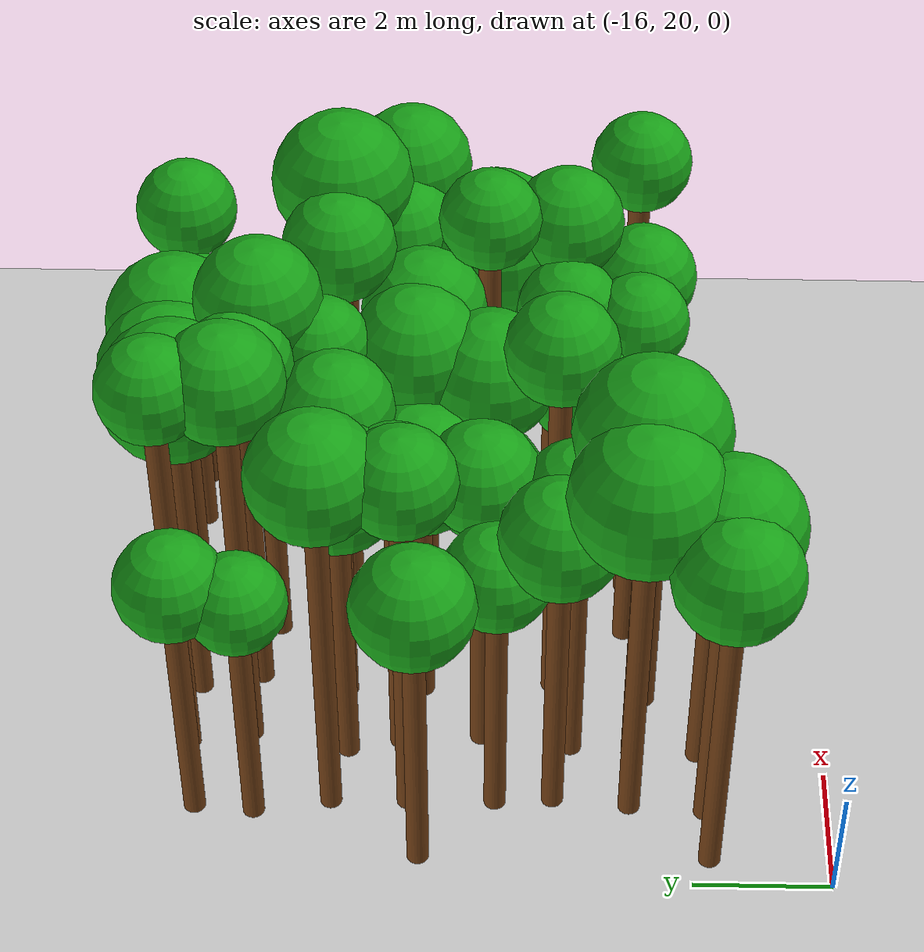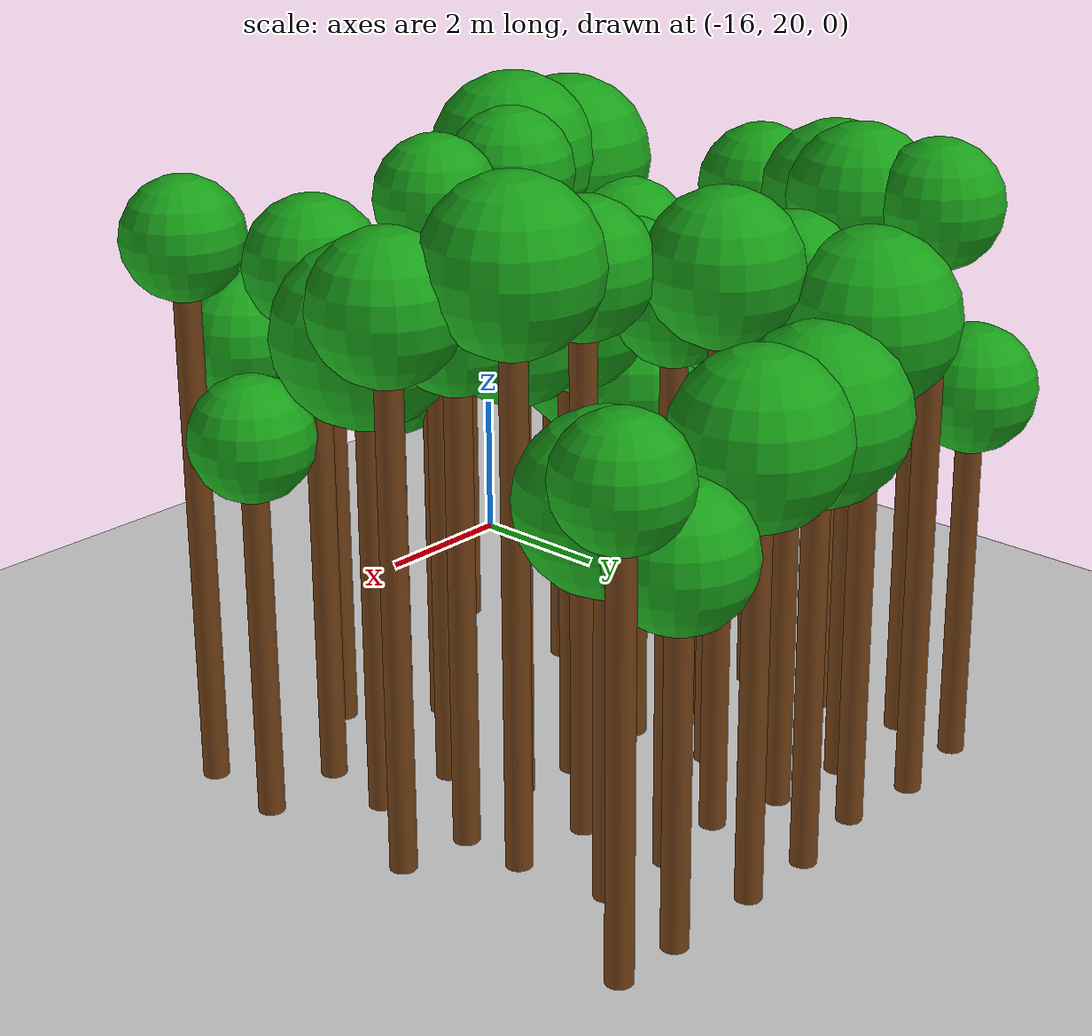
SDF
<sdf version="1.6">
 <world name="forest_world">
  <include><uri>model://sun</uri></include>
  <include><uri>model://ground_plane</uri></include>
  <model name="tree_762_trunk">
   <static>true</static>
   <pose>-15.53 21.75 2.76 0 0 0</pose>
   <link name="link">
    <collision name="collision">
     <geometry><cylinder><radius>0.16</radius><length>5.51</length></cylinder></geometry>
    </collision>
    <visual name="visual">
     <geometry><cylinder><radius>0.16</radius><length>5.51</length></cylinder></geometry>
     <material><ambient>0.35 0.20 0.05 1</ambient><diffuse>0.45 0.25 0.08 1</diffuse></material>
    </visual>
   </link>
  </model>
  <model name="tree_762_leaf">
   <static>true</static>
   <pose>-15.53 21.75 6.05 0 0 0</pose>
   <link name="link">
    <collision name="collision"><geometry><sphere><radius>0.89</radius></sphere></geometry></collision>
    <visual name="visual">
     <geometry><sphere><radius>0.89</radius></sphere></geometry>
     <material><ambient>0.05 0.45 0.05 1</ambient><diffuse>0.10 0.65 0.10 1</diffuse></material>
    </visual>
   </link>
  </model>
  <model name="tree_766_trunk">
   <static>true</static>
   <pose>-15.55 25.94 2.44 0 0 0</pose>
   <link name="link">
    <collision name="collision">
     <geometry><cylinder><radius>0.16</radius><length>4.88</length></cylinder></geometry>
    </collision>
    <visual name="visual">
     <geometry><cylinder><radius>0.16</radius><length>4.88</length></cylinder></geometry>
     <material><ambient>0.35 0.20 0.05 1</ambient><diffuse>0.45 0.25 0.08 1</diffuse></material>
    </visual>
   </link>
  </model>
  <model name="tree_766_leaf">
   <static>true</static>
   <pose>-15.55 25.94 5.40 0 0 0</pose>
   <link name="link">
    <collision name="collision"><geometry><sphere><radius>0.86</radius></sphere></geometry></collision>
    <visual name="visual">
     <geometry><sphere><radius>0.86</radius></sphere></geometry>
     <material><ambient>0.05 0.45 0.05 1</ambient><diffuse>0.10 0.65 0.10 1</diffuse></material>
    </visual>
   </link>
  </model>
  <model name="tree_817_trunk">
   <static>true</static>
   <pose>-14.68 21.79 2.74 0 0 0</pose>
   <link name="link">
    <collision name="collision">
     <geometry><cylinder><radius>0.16</radius><length>5.48</length></cylinder></geometry>
    </collision>
    <visual name="visual">
     <geometry><cylinder><radius>0.16</radius><length>5.48</length></cylinder></geometry>
     <material><ambient>0.35 0.20 0.05 1</ambient><diffuse>0.45 0.25 0.08 1</diffuse></material>
    </visual>
   </link>
  </model>
  <model name="tree_817_leaf">
   <static>true</static>
   <pose>-14.68 21.79 6.08 0 0 0</pose>
   <link name="link">
    <collision name="collision"><geometry><sphere><radius>1.01</radius></sphere></geometry></collision>
    <visual name="visual">
     <geometry><sphere><radius>1.01</radius></sphere></geometry>
     <material><ambient>0.05 0.45 0.05 1</ambient><diffuse>0.10 0.65 0.10 1</diffuse></material>
    </visual>
   </link>
  </model>
  <model name="tree_818_trunk">
   <static>true</static>
   <pose>-14.60 22.89 2.94 0 0 0</pose>
   <link name="link">
    <collision name="collision">
     <geometry><cylinder><radius>0.16</radius><length>5.88</length></cylinder></geometry>
    </collision>
    <visual name="visual">
     <geometry><cylinder><radius>0.16</radius><length>5.88</length></cylinder></geometry>
     <material><ambient>0.35 0.20 0.05 1</ambient><diffuse>0.45 0.25 0.08 1</diffuse></material>
    </visual>
   </link>
  </model>
  <model name="tree_818_leaf">
   <static>true</static>
   <pose>-14.60 22.89 6.53 0 0 0</pose>
   <link name="link">
    <collision name="collision"><geometry><sphere><radius>1.09</radius></sphere></geometry></collision>
    <visual name="visual">
     <geometry><sphere><radius>1.09</radius></sphere></geometry>
     <material><ambient>0.05 0.45 0.05 1</ambient><diffuse>0.10 0.65 0.10 1</diffuse></material>
    </visual>
   </link>
  </model>
  <model name="tree_819_trunk">
   <static>true</static>
   <pose>-14.49 24.01 2.54 0 0 0</pose>
   <link name="link">
    <collision name="collision">
     <geometry><cylinder><radius>0.16</radius><length>5.09</length></cylinder></geometry>
    </collision>
    <visual name="visual">
     <geometry><cylinder><radius>0.16</radius><length>5.09</length></cylinder></geometry>
     <material><ambient>0.35 0.20 0.05 1</ambient><diffuse>0.45 0.25 0.08 1</diffuse></material>
    </visual>
   </link>
  </model>
  <model name="tree_819_leaf">
   <static>true</static>
   <pose>-14.49 24.01 5.61 0 0 0</pose>
   <link name="link">
    <collision name="collision"><geometry><sphere><radius>0.86</radius></sphere></geometry></collision>
    <visual name="visual">
     <geometry><sphere><radius>0.86</radius></sphere></geometry>
     <material><ambient>0.05 0.45 0.05 1</ambient><diffuse>0.10 0.65 0.10 1</diffuse></material>
    </visual>
   </link>
  </model>
  <model name="tree_820_trunk">
   <static>true</static>
   <pose>-14.55 24.85 2.22 0 0 0</pose>
   <link name="link">
    <collision name="collision">
     <geometry><cylinder><radius>0.16</radius><length>4.45</length></cylinder></geometry>
    </collision>
    <visual name="visual">
     <geometry><cylinder><radius>0.16</radius><length>4.45</length></cylinder></geometry>
     <material><ambient>0.35 0.20 0.05 1</ambient><diffuse>0.45 0.25 0.08 1</diffuse></material>
    </visual>
   </link>
  </model>
  <model name="tree_820_leaf">
   <static>true</static>
   <pose>-14.55 24.85 4.91 0 0 0</pose>
   <link name="link">
    <collision name="collision"><geometry><sphere><radius>0.77</radius></sphere></geometry></collision>
    <visual name="visual">
     <geometry><sphere><radius>0.77</radius></sphere></geometry>
     <material><ambient>0.05 0.45 0.05 1</ambient><diffuse>0.10 0.65 0.10 1</diffuse></material>
    </visual>
   </link>
  </model>
  <model name="tree_821_trunk">
   <static>true</static>
   <pose>-14.57 26.12 3.13 0 0 0</pose>
   <link name="link">
    <collision name="collision">
     <geometry><cylinder><radius>0.16</radius><length>6.26</length></cylinder></geometry>
    </collision>
    <visual name="visual">
     <geometry><cylinder><radius>0.16</radius><length>6.26</length></cylinder></geometry>
     <material><ambient>0.35 0.20 0.05 1</ambient><diffuse>0.45 0.25 0.08 1</diffuse></material>
    </visual>
   </link>
  </model>
  <model name="tree_821_leaf">
   <static>true</static>
   <pose>-14.57 26.12 6.73 0 0 0</pose>
   <link name="link">
    <collision name="collision"><geometry><sphere><radius>0.78</radius></sphere></geometry></collision>
    <visual name="visual">
     <geometry><sphere><radius>0.78</radius></sphere></geometry>
     <material><ambient>0.05 0.45 0.05 1</ambient><diffuse>0.10 0.65 0.10 1</diffuse></material>
    </visual>
   </link>
  </model>
  <model name="tree_822_trunk">
   <static>true</static>
   <pose>-14.58 27.24 3.13 0 0 0</pose>
   <link name="link">
    <collision name="collision">
     <geometry><cylinder><radius>0.16</radius><length>6.26</length></cylinder></geometry>
    </collision>
    <visual name="visual">
     <geometry><cylinder><radius>0.16</radius><length>6.26</length></cylinder></geometry>
     <material><ambient>0.35 0.20 0.05 1</ambient><diffuse>0.45 0.25 0.08 1</diffuse></material>
    </visual>
   </link>
  </model>
  <model name="tree_822_leaf">
   <static>true</static>
   <pose>-14.58 27.24 6.81 0 0 0</pose>
   <link name="link">
    <collision name="collision"><geometry><sphere><radius>0.92</radius></sphere></geometry></collision>
    <visual name="visual">
     <geometry><sphere><radius>0.92</radius></sphere></geometry>
     <material><ambient>0.05 0.45 0.05 1</ambient><diffuse>0.10 0.65 0.10 1</diffuse></material>
    </visual>
   </link>
  </model>
  <model name="tree_823_trunk">
   <static>true</static>
   <pose>-14.78 28.36 2.06 0 0 0</pose>
   <link name="link">
    <collision name="collision">
     <geometry><cylinder><radius>0.16</radius><length>4.11</length></cylinder></geometry>
    </collision>
    <visual name="visual">
     <geometry><cylinder><radius>0.16</radius><length>4.11</length></cylinder></geometry>
     <material><ambient>0.35 0.20 0.05 1</ambient><diffuse>0.45 0.25 0.08 1</diffuse></material>
    </visual>
   </link>
  </model>
  <model name="tree_823_leaf">
   <static>true</static>
   <pose>-14.78 28.36 4.55 0 0 0</pose>
   <link name="link">
    <collision name="collision"><geometry><sphere><radius>0.72</radius></sphere></geometry></collision>
    <visual name="visual">
     <geometry><sphere><radius>0.72</radius></sphere></geometry>
     <material><ambient>0.05 0.45 0.05 1</ambient><diffuse>0.10 0.65 0.10 1</diffuse></material>
    </visual>
   </link>
  </model>
  <model name="tree_824_trunk">
   <static>true</static>
   <pose>-14.71 29.23 2.17 0 0 0</pose>
   <link name="link">
    <collision name="collision">
     <geometry><cylinder><radius>0.16</radius><length>4.33</length></cylinder></geometry>
    </collision>
    <visual name="visual">
     <geometry><cylinder><radius>0.16</radius><length>4.33</length></cylinder></geometry>
     <material><ambient>0.35 0.20 0.05 1</ambient><diffuse>0.45 0.25 0.08 1</diffuse></material>
    </visual>
   </link>
  </model>
  <model name="tree_824_leaf">
   <static>true</static>
   <pose>-14.71 29.23 4.80 0 0 0</pose>
   <link name="link">
    <collision name="collision"><geometry><sphere><radius>0.78</radius></sphere></geometry></collision>
    <visual name="visual">
     <geometry><sphere><radius>0.78</radius></sphere></geometry>
     <material><ambient>0.05 0.45 0.05 1</ambient><diffuse>0.10 0.65 0.10 1</diffuse></material>
    </visual>
   </link>
  </model>
  <model name="tree_872_trunk">
   <static>true</static>
   <pose>-13.62 21.87 2.33 0 0 0</pose>
   <link name="link">
    <collision name="collision">
     <geometry><cylinder><radius>0.16</radius><length>4.67</length></cylinder></geometry>
    </collision>
    <visual name="visual">
     <geometry><cylinder><radius>0.16</radius><length>4.67</length></cylinder></geometry>
     <material><ambient>0.35 0.20 0.05 1</ambient><diffuse>0.45 0.25 0.08 1</diffuse></material>
    </visual>
   </link>
  </model>
  <model name="tree_872_leaf">
   <static>true</static>
   <pose>-13.62 21.87 5.19 0 0 0</pose>
   <link name="link">
    <collision name="collision"><geometry><sphere><radius>0.88</radius></sphere></geometry></collision>
    <visual name="visual">
     <geometry><sphere><radius>0.88</radius></sphere></geometry>
     <material><ambient>0.05 0.45 0.05 1</ambient><diffuse>0.10 0.65 0.10 1</diffuse></material>
    </visual>
   </link>
  </model>
  <model name="tree_873_trunk">
   <static>true</static>
   <pose>-13.62 22.83 3.05 0 0 0</pose>
   <link name="link">
    <collision name="collision">
     <geometry><cylinder><radius>0.16</radius><length>6.10</length></cylinder></geometry>
    </collision>
    <visual name="visual">
     <geometry><cylinder><radius>0.16</radius><length>6.10</length></cylinder></geometry>
     <material><ambient>0.35 0.20 0.05 1</ambient><diffuse>0.45 0.25 0.08 1</diffuse></material>
    </visual>
   </link>
  </model>
  <model name="tree_873_leaf">
   <static>true</static>
   <pose>-13.62 22.83 6.74 0 0 0</pose>
   <link name="link">
    <collision name="collision"><geometry><sphere><radius>1.08</radius></sphere></geometry></collision>
    <visual name="visual">
     <geometry><sphere><radius>1.08</radius></sphere></geometry>
     <material><ambient>0.05 0.45 0.05 1</ambient><diffuse>0.10 0.65 0.10 1</diffuse></material>
    </visual>
   </link>
  </model>
  <model name="tree_874_trunk">
   <static>true</static>
   <pose>-13.52 23.74 2.44 0 0 0</pose>
   <link name="link">
    <collision name="collision">
     <geometry><cylinder><radius>0.16</radius><length>4.89</length></cylinder></geometry>
    </collision>
    <visual name="visual">
     <geometry><cylinder><radius>0.16</radius><length>4.89</length></cylinder></geometry>
     <material><ambient>0.35 0.20 0.05 1</ambient><diffuse>0.45 0.25 0.08 1</diffuse></material>
    </visual>
   </link>
  </model>
  <model name="tree_874_leaf">
   <static>true</static>
   <pose>-13.52 23.74 5.38 0 0 0</pose>
   <link name="link">
    <collision name="collision"><geometry><sphere><radius>0.83</radius></sphere></geometry></collision>
    <visual name="visual">
     <geometry><sphere><radius>0.83</radius></sphere></geometry>
     <material><ambient>0.05 0.45 0.05 1</ambient><diffuse>0.10 0.65 0.10 1</diffuse></material>
    </visual>
   </link>
  </model>
  <model name="tree_875_trunk">
   <static>true</static>
   <pose>-13.35 25.07 2.54 0 0 0</pose>
   <link name="link">
    <collision name="collision">
     <geometry><cylinder><radius>0.16</radius><length>5.08</length></cylinder></geometry>
    </collision>
    <visual name="visual">
     <geometry><cylinder><radius>0.16</radius><length>5.08</length></cylinder></geometry>
     <material><ambient>0.35 0.20 0.05 1</ambient><diffuse>0.45 0.25 0.08 1</diffuse></material>
    </visual>
   </link>
  </model>
  <model name="tree_875_leaf">
   <static>true</static>
   <pose>-13.35 25.07 5.57 0 0 0</pose>
   <link name="link">
    <collision name="collision"><geometry><sphere><radius>0.81</radius></sphere></geometry></collision>
    <visual name="visual">
     <geometry><sphere><radius>0.81</radius></sphere></geometry>
     <material><ambient>0.05 0.45 0.05 1</ambient><diffuse>0.10 0.65 0.10 1</diffuse></material>
    </visual>
   </link>
  </model>
  <model name="tree_876_trunk">
   <static>true</static>
   <pose>-13.44 26.26 2.61 0 0 0</pose>
   <link name="link">
    <collision name="collision">
     <geometry><cylinder><radius>0.16</radius><length>5.23</length></cylinder></geometry>
    </collision>
    <visual name="visual">
     <geometry><cylinder><radius>0.16</radius><length>5.23</length></cylinder></geometry>
     <material><ambient>0.35 0.20 0.05 1</ambient><diffuse>0.45 0.25 0.08 1</diffuse></material>
    </visual>
   </link>
  </model>
  <model name="tree_876_leaf">
   <static>true</static>
   <pose>-13.44 26.26 5.68 0 0 0</pose>
   <link name="link">
    <collision name="collision"><geometry><sphere><radius>0.75</radius></sphere></geometry></collision>
    <visual name="visual">
     <geometry><sphere><radius>0.75</radius></sphere></geometry>
     <material><ambient>0.05 0.45 0.05 1</ambient><diffuse>0.10 0.65 0.10 1</diffuse></material>
    </visual>
   </link>
  </model>
  <model name="tree_877_trunk">
   <static>true</static>
   <pose>-13.62 27.03 2.53 0 0 0</pose>
   <link name="link">
    <collision name="collision">
     <geometry><cylinder><radius>0.16</radius><length>5.07</length></cylinder></geometry>
    </collision>
    <visual name="visual">
     <geometry><cylinder><radius>0.16</radius><length>5.07</length></cylinder></geometry>
     <material><ambient>0.35 0.20 0.05 1</ambient><diffuse>0.45 0.25 0.08 1</diffuse></material>
    </visual>
   </link>
  </model>
  <model name="tree_877_leaf">
   <static>true</static>
   <pose>-13.62 27.03 5.62 0 0 0</pose>
   <link name="link">
    <collision name="collision"><geometry><sphere><radius>0.93</radius></sphere></geometry></collision>
    <visual name="visual">
     <geometry><sphere><radius>0.93</radius></sphere></geometry>
     <material><ambient>0.05 0.45 0.05 1</ambient><diffuse>0.10 0.65 0.10 1</diffuse></material>
    </visual>
   </link>
  </model>
  <model name="tree_878_trunk">
   <static>true</static>
   <pose>-13.34 28.48 3.38 0 0 0</pose>
   <link name="link">
    <collision name="collision">
     <geometry><cylinder><radius>0.16</radius><length>6.76</length></cylinder></geometry>
    </collision>
    <visual name="visual">
     <geometry><cylinder><radius>0.16</radius><length>6.76</length></cylinder></geometry>
     <material><ambient>0.35 0.20 0.05 1</ambient><diffuse>0.45 0.25 0.08 1</diffuse></material>
    </visual>
   </link>
  </model>
  <model name="tree_878_leaf">
   <static>true</static>
   <pose>-13.34 28.48 7.27 0 0 0</pose>
   <link name="link">
    <collision name="collision"><geometry><sphere><radius>0.85</radius></sphere></geometry></collision>
    <visual name="visual">
     <geometry><sphere><radius>0.85</radius></sphere></geometry>
     <material><ambient>0.05 0.45 0.05 1</ambient><diffuse>0.10 0.65 0.10 1</diffuse></material>
    </visual>
   </link>
  </model>
  <model name="tree_879_trunk">
   <static>true</static>
   <pose>-13.53 29.40 3.43 0 0 0</pose>
   <link name="link">
    <collision name="collision">
     <geometry><cylinder><radius>0.16</radius><length>6.86</length></cylinder></geometry>
    </collision>
    <visual name="visual">
     <geometry><cylinder><radius>0.16</radius><length>6.86</length></cylinder></geometry>
     <material><ambient>0.35 0.20 0.05 1</ambient><diffuse>0.45 0.25 0.08 1</diffuse></material>
    </visual>
   </link>
  </model>
  <model name="tree_879_leaf">
   <static>true</static>
   <pose>-13.53 29.40 7.31 0 0 0</pose>
   <link name="link">
    <collision name="collision"><geometry><sphere><radius>0.75</radius></sphere></geometry></collision>
    <visual name="visual">
     <geometry><sphere><radius>0.75</radius></sphere></geometry>
     <material><ambient>0.05 0.45 0.05 1</ambient><diffuse>0.10 0.65 0.10 1</diffuse></material>
    </visual>
   </link>
  </model>
  <model name="tree_928_trunk">
   <static>true</static>
   <pose>-12.57 22.63 2.17 0 0 0</pose>
   <link name="link">
    <collision name="collision">
     <geometry><cylinder><radius>0.16</radius><length>4.35</length></cylinder></geometry>
    </collision>
    <visual name="visual">
     <geometry><cylinder><radius>0.16</radius><length>4.35</length></cylinder></geometry>
     <material><ambient>0.35 0.20 0.05 1</ambient><diffuse>0.45 0.25 0.08 1</diffuse></material>
    </visual>
   </link>
  </model>
  <model name="tree_928_leaf">
   <static>true</static>
   <pose>-12.57 22.63 4.94 0 0 0</pose>
   <link name="link">
    <collision name="collision"><geometry><sphere><radius>0.98</radius></sphere></geometry></collision>
    <visual name="visual">
     <geometry><sphere><radius>0.98</radius></sphere></geometry>
     <material><ambient>0.05 0.45 0.05 1</ambient><diffuse>0.10 0.65 0.10 1</diffuse></material>
    </visual>
   </link>
  </model>
  <model name="tree_929_trunk">
   <static>true</static>
   <pose>-12.32 24.02 3.26 0 0 0</pose>
   <link name="link">
    <collision name="collision">
     <geometry><cylinder><radius>0.16</radius><length>6.52</length></cylinder></geometry>
    </collision>
    <visual name="visual">
     <geometry><cylinder><radius>0.16</radius><length>6.52</length></cylinder></geometry>
     <material><ambient>0.35 0.20 0.05 1</ambient><diffuse>0.45 0.25 0.08 1</diffuse></material>
    </visual>
   </link>
  </model>
  <model name="tree_929_leaf">
   <static>true</static>
   <pose>-12.32 24.02 6.99 0 0 0</pose>
   <link name="link">
    <collision name="collision"><geometry><sphere><radius>0.79</radius></sphere></geometry></collision>
    <visual name="visual">
     <geometry><sphere><radius>0.79</radius></sphere></geometry>
     <material><ambient>0.05 0.45 0.05 1</ambient><diffuse>0.10 0.65 0.10 1</diffuse></material>
    </visual>
   </link>
  </model>
  <model name="tree_930_trunk">
   <static>true</static>
   <pose>-12.57 25.03 2.09 0 0 0</pose>
   <link name="link">
    <collision name="collision">
     <geometry><cylinder><radius>0.16</radius><length>4.17</length></cylinder></geometry>
    </collision>
    <visual name="visual">
     <geometry><cylinder><radius>0.16</radius><length>4.17</length></cylinder></geometry>
     <material><ambient>0.35 0.20 0.05 1</ambient><diffuse>0.45 0.25 0.08 1</diffuse></material>
    </visual>
   </link>
  </model>
  <model name="tree_930_leaf">
   <static>true</static>
   <pose>-12.57 25.03 4.69 0 0 0</pose>
   <link name="link">
    <collision name="collision"><geometry><sphere><radius>0.85</radius></sphere></geometry></collision>
    <visual name="visual">
     <geometry><sphere><radius>0.85</radius></sphere></geometry>
     <material><ambient>0.05 0.45 0.05 1</ambient><diffuse>0.10 0.65 0.10 1</diffuse></material>
    </visual>
   </link>
  </model>
  <model name="tree_931_trunk">
   <static>true</static>
   <pose>-12.43 25.95 2.11 0 0 0</pose>
   <link name="link">
    <collision name="collision">
     <geometry><cylinder><radius>0.16</radius><length>4.22</length></cylinder></geometry>
    </collision>
    <visual name="visual">
     <geometry><cylinder><radius>0.16</radius><length>4.22</length></cylinder></geometry>
     <material><ambient>0.35 0.20 0.05 1</ambient><diffuse>0.45 0.25 0.08 1</diffuse></material>
    </visual>
   </link>
  </model>
  <model name="tree_931_leaf">
   <static>true</static>
   <pose>-12.43 25.95 4.80 0 0 0</pose>
   <link name="link">
    <collision name="collision"><geometry><sphere><radius>0.97</radius></sphere></geometry></collision>
    <visual name="visual">
     <geometry><sphere><radius>0.97</radius></sphere></geometry>
     <material><ambient>0.05 0.45 0.05 1</ambient><diffuse>0.10 0.65 0.10 1</diffuse></material>
    </visual>
   </link>
  </model>
  <model name="tree_932_trunk">
   <static>true</static>
   <pose>-12.49 27.10 2.73 0 0 0</pose>
   <link name="link">
    <collision name="collision">
     <geometry><cylinder><radius>0.16</radius><length>5.46</length></cylinder></geometry>
    </collision>
    <visual name="visual">
     <geometry><cylinder><radius>0.16</radius><length>5.46</length></cylinder></geometry>
     <material><ambient>0.35 0.20 0.05 1</ambient><diffuse>0.45 0.25 0.08 1</diffuse></material>
    </visual>
   </link>
  </model>
  <model name="tree_932_leaf">
   <static>true</static>
   <pose>-12.49 27.10 5.97 0 0 0</pose>
   <link name="link">
    <collision name="collision"><geometry><sphere><radius>0.84</radius></sphere></geometry></collision>
    <visual name="visual">
     <geometry><sphere><radius>0.84</radius></sphere></geometry>
     <material><ambient>0.05 0.45 0.05 1</ambient><diffuse>0.10 0.65 0.10 1</diffuse></material>
    </visual>
   </link>
  </model>
  <model name="tree_933_trunk">
   <static>true</static>
   <pose>-12.23 28.40 3.05 0 0 0</pose>
   <link name="link">
    <collision name="collision">
     <geometry><cylinder><radius>0.16</radius><length>6.10</length></cylinder></geometry>
    </collision>
    <visual name="visual">
     <geometry><cylinder><radius>0.16</radius><length>6.10</length></cylinder></geometry>
     <material><ambient>0.35 0.20 0.05 1</ambient><diffuse>0.45 0.25 0.08 1</diffuse></material>
    </visual>
   </link>
  </model>
  <model name="tree_933_leaf">
   <static>true</static>
   <pose>-12.23 28.40 6.56 0 0 0</pose>
   <link name="link">
    <collision name="collision"><geometry><sphere><radius>0.76</radius></sphere></geometry></collision>
    <visual name="visual">
     <geometry><sphere><radius>0.76</radius></sphere></geometry>
     <material><ambient>0.05 0.45 0.05 1</ambient><diffuse>0.10 0.65 0.10 1</diffuse></material>
    </visual>
   </link>
  </model>
  <model name="tree_934_trunk">
   <static>true</static>
   <pose>-12.45 29.31 2.81 0 0 0</pose>
   <link name="link">
    <collision name="collision">
     <geometry><cylinder><radius>0.16</radius><length>5.63</length></cylinder></geometry>
    </collision>
    <visual name="visual">
     <geometry><cylinder><radius>0.16</radius><length>5.63</length></cylinder></geometry>
     <material><ambient>0.35 0.20 0.05 1</ambient><diffuse>0.45 0.25 0.08 1</diffuse></material>
    </visual>
   </link>
  </model>
  <model name="tree_934_leaf">
   <static>true</static>
   <pose>-12.45 29.31 6.24 0 0 0</pose>
   <link name="link">
    <collision name="collision"><geometry><sphere><radius>1.02</radius></sphere></geometry></collision>
    <visual name="visual">
     <geometry><sphere><radius>1.02</radius></sphere></geometry>
     <material><ambient>0.05 0.45 0.05 1</ambient><diffuse>0.10 0.65 0.10 1</diffuse></material>
    </visual>
   </link>
  </model>
  <model name="tree_983_trunk">
   <static>true</static>
   <pose>-11.25 22.92 2.01 0 0 0</pose>
   <link name="link">
    <collision name="collision">
     <geometry><cylinder><radius>0.16</radius><length>4.02</length></cylinder></geometry>
    </collision>
    <visual name="visual">
     <geometry><cylinder><radius>0.16</radius><length>4.02</length></cylinder></geometry>
     <material><ambient>0.35 0.20 0.05 1</ambient><diffuse>0.45 0.25 0.08 1</diffuse></material>
    </visual>
   </link>
  </model>
  <model name="tree_983_leaf">
   <static>true</static>
   <pose>-11.25 22.92 4.60 0 0 0</pose>
   <link name="link">
    <collision name="collision"><geometry><sphere><radius>0.96</radius></sphere></geometry></collision>
    <visual name="visual">
     <geometry><sphere><radius>0.96</radius></sphere></geometry>
     <material><ambient>0.05 0.45 0.05 1</ambient><diffuse>0.10 0.65 0.10 1</diffuse></material>
    </visual>
   </link>
  </model>
  <model name="tree_984_trunk">
   <static>true</static>
   <pose>-11.24 23.72 2.38 0 0 0</pose>
   <link name="link">
    <collision name="collision">
     <geometry><cylinder><radius>0.16</radius><length>4.76</length></cylinder></geometry>
    </collision>
    <visual name="visual">
     <geometry><cylinder><radius>0.16</radius><length>4.76</length></cylinder></geometry>
     <material><ambient>0.35 0.20 0.05 1</ambient><diffuse>0.45 0.25 0.08 1</diffuse></material>
    </visual>
   </link>
  </model>
  <model name="tree_984_leaf">
   <static>true</static>
   <pose>-11.24 23.72 5.22 0 0 0</pose>
   <link name="link">
    <collision name="collision"><geometry><sphere><radius>0.77</radius></sphere></geometry></collision>
    <visual name="visual">
     <geometry><sphere><radius>0.77</radius></sphere></geometry>
     <material><ambient>0.05 0.45 0.05 1</ambient><diffuse>0.10 0.65 0.10 1</diffuse></material>
    </visual>
   </link>
  </model>
  <model name="tree_985_trunk">
   <static>true</static>
   <pose>-11.38 24.98 2.52 0 0 0</pose>
   <link name="link">
    <collision name="collision">
     <geometry><cylinder><radius>0.16</radius><length>5.04</length></cylinder></geometry>
    </collision>
    <visual name="visual">
     <geometry><cylinder><radius>0.16</radius><length>5.04</length></cylinder></geometry>
     <material><ambient>0.35 0.20 0.05 1</ambient><diffuse>0.45 0.25 0.08 1</diffuse></material>
    </visual>
   </link>
  </model>
  <model name="tree_985_leaf">
   <static>true</static>
   <pose>-11.38 24.98 5.61 0 0 0</pose>
   <link name="link">
    <collision name="collision"><geometry><sphere><radius>0.95</radius></sphere></geometry></collision>
    <visual name="visual">
     <geometry><sphere><radius>0.95</radius></sphere></geometry>
     <material><ambient>0.05 0.45 0.05 1</ambient><diffuse>0.10 0.65 0.10 1</diffuse></material>
    </visual>
   </link>
  </model>
  <model name="tree_986_trunk">
   <static>true</static>
   <pose>-11.19 26.03 2.67 0 0 0</pose>
   <link name="link">
    <collision name="collision">
     <geometry><cylinder><radius>0.16</radius><length>5.35</length></cylinder></geometry>
    </collision>
    <visual name="visual">
     <geometry><cylinder><radius>0.16</radius><length>5.35</length></cylinder></geometry>
     <material><ambient>0.35 0.20 0.05 1</ambient><diffuse>0.45 0.25 0.08 1</diffuse></material>
    </visual>
   </link>
  </model>
  <model name="tree_986_leaf">
   <static>true</static>
   <pose>-11.19 26.03 5.91 0 0 0</pose>
   <link name="link">
    <collision name="collision"><geometry><sphere><radius>0.93</radius></sphere></geometry></collision>
    <visual name="visual">
     <geometry><sphere><radius>0.93</radius></sphere></geometry>
     <material><ambient>0.05 0.45 0.05 1</ambient><diffuse>0.10 0.65 0.10 1</diffuse></material>
    </visual>
   </link>
  </model>
  <model name="tree_987_trunk">
   <static>true</static>
   <pose>-11.46 27.34 2.89 0 0 0</pose>
   <link name="link">
    <collision name="collision">
     <geometry><cylinder><radius>0.16</radius><length>5.77</length></cylinder></geometry>
    </collision>
    <visual name="visual">
     <geometry><cylinder><radius>0.16</radius><length>5.77</length></cylinder></geometry>
     <material><ambient>0.35 0.20 0.05 1</ambient><diffuse>0.45 0.25 0.08 1</diffuse></material>
    </visual>
   </link>
  </model>
  <model name="tree_987_leaf">
   <static>true</static>
   <pose>-11.46 27.34 6.20 0 0 0</pose>
   <link name="link">
    <collision name="collision"><geometry><sphere><radius>0.71</radius></sphere></geometry></collision>
    <visual name="visual">
     <geometry><sphere><radius>0.71</radius></sphere></geometry>
     <material><ambient>0.05 0.45 0.05 1</ambient><diffuse>0.10 0.65 0.10 1</diffuse></material>
    </visual>
   </link>
  </model>
  <model name="tree_988_trunk">
   <static>true</static>
   <pose>-11.26 28.19 3.16 0 0 0</pose>
   <link name="link">
    <collision name="collision">
     <geometry><cylinder><radius>0.16</radius><length>6.31</length></cylinder></geometry>
    </collision>
    <visual name="visual">
     <geometry><cylinder><radius>0.16</radius><length>6.31</length></cylinder></geometry>
     <material><ambient>0.35 0.20 0.05 1</ambient><diffuse>0.45 0.25 0.08 1</diffuse></material>
    </visual>
   </link>
  </model>
  <model name="tree_988_leaf">
   <static>true</static>
   <pose>-11.26 28.19 6.85 0 0 0</pose>
   <link name="link">
    <collision name="collision"><geometry><sphere><radius>0.90</radius></sphere></geometry></collision>
    <visual name="visual">
     <geometry><sphere><radius>0.90</radius></sphere></geometry>
     <material><ambient>0.05 0.45 0.05 1</ambient><diffuse>0.10 0.65 0.10 1</diffuse></material>
    </visual>
   </link>
  </model>
  <model name="tree_989_trunk">
   <static>true</static>
   <pose>-11.29 29.51 2.43 0 0 0</pose>
   <link name="link">
    <collision name="collision">
     <geometry><cylinder><radius>0.16</radius><length>4.86</length></cylinder></geometry>
    </collision>
    <visual name="visual">
     <geometry><cylinder><radius>0.16</radius><length>4.86</length></cylinder></geometry>
     <material><ambient>0.35 0.20 0.05 1</ambient><diffuse>0.45 0.25 0.08 1</diffuse></material>
    </visual>
   </link>
  </model>
  <model name="tree_989_leaf">
   <static>true</static>
   <pose>-11.29 29.51 5.48 0 0 0</pose>
   <link name="link">
    <collision name="collision"><geometry><sphere><radius>1.03</radius></sphere></geometry></collision>
    <visual name="visual">
     <geometry><sphere><radius>1.03</radius></sphere></geometry>
     <material><ambient>0.05 0.45 0.05 1</ambient><diffuse>0.10 0.65 0.10 1</diffuse></material>
    </visual>
   </link>
  </model>
  <model name="tree_1038_trunk">
   <static>true</static>
   <pose>-10.29 22.89 2.60 0 0 0</pose>
   <link name="link">
    <collision name="collision">
     <geometry><cylinder><radius>0.16</radius><length>5.20</length></cylinder></geometry>
    </collision>
    <visual name="visual">
     <geometry><cylinder><radius>0.16</radius><length>5.20</length></cylinder></geometry>
     <material><ambient>0.35 0.20 0.05 1</ambient><diffuse>0.45 0.25 0.08 1</diffuse></material>
    </visual>
   </link>
  </model>
  <model name="tree_1038_leaf">
   <static>true</static>
   <pose>-10.29 22.89 5.63 0 0 0</pose>
   <link name="link">
    <collision name="collision"><geometry><sphere><radius>0.72</radius></sphere></geometry></collision>
    <visual name="visual">
     <geometry><sphere><radius>0.72</radius></sphere></geometry>
     <material><ambient>0.05 0.45 0.05 1</ambient><diffuse>0.10 0.65 0.10 1</diffuse></material>
    </visual>
   </link>
  </model>
  <model name="tree_1039_trunk">
   <static>true</static>
   <pose>-10.16 23.89 2.64 0 0 0</pose>
   <link name="link">
    <collision name="collision">
     <geometry><cylinder><radius>0.16</radius><length>5.29</length></cylinder></geometry>
    </collision>
    <visual name="visual">
     <geometry><cylinder><radius>0.16</radius><length>5.29</length></cylinder></geometry>
     <material><ambient>0.35 0.20 0.05 1</ambient><diffuse>0.45 0.25 0.08 1</diffuse></material>
    </visual>
   </link>
  </model>
  <model name="tree_1039_leaf">
   <static>true</static>
   <pose>-10.16 23.89 5.74 0 0 0</pose>
   <link name="link">
    <collision name="collision"><geometry><sphere><radius>0.75</radius></sphere></geometry></collision>
    <visual name="visual">
     <geometry><sphere><radius>0.75</radius></sphere></geometry>
     <material><ambient>0.05 0.45 0.05 1</ambient><diffuse>0.10 0.65 0.10 1</diffuse></material>
    </visual>
   </link>
  </model>
  <model name="tree_1040_trunk">
   <static>true</static>
   <pose>-10.05 25.02 3.44 0 0 0</pose>
   <link name="link">
    <collision name="collision">
     <geometry><cylinder><radius>0.16</radius><length>6.88</length></cylinder></geometry>
    </collision>
    <visual name="visual">
     <geometry><cylinder><radius>0.16</radius><length>6.88</length></cylinder></geometry>
     <material><ambient>0.35 0.20 0.05 1</ambient><diffuse>0.45 0.25 0.08 1</diffuse></material>
    </visual>
   </link>
  </model>
  <model name="tree_1040_leaf">
   <static>true</static>
   <pose>-10.05 25.02 7.31 0 0 0</pose>
   <link name="link">
    <collision name="collision"><geometry><sphere><radius>0.72</radius></sphere></geometry></collision>
    <visual name="visual">
     <geometry><sphere><radius>0.72</radius></sphere></geometry>
     <material><ambient>0.05 0.45 0.05 1</ambient><diffuse>0.10 0.65 0.10 1</diffuse></material>
    </visual>
   </link>
  </model>
  <model name="tree_1041_trunk">
   <static>true</static>
   <pose>-10.36 25.94 2.68 0 0 0</pose>
   <link name="link">
    <collision name="collision">
     <geometry><cylinder><radius>0.16</radius><length>5.36</length></cylinder></geometry>
    </collision>
    <visual name="visual">
     <geometry><cylinder><radius>0.16</radius><length>5.36</length></cylinder></geometry>
     <material><ambient>0.35 0.20 0.05 1</ambient><diffuse>0.45 0.25 0.08 1</diffuse></material>
    </visual>
   </link>
  </model>
  <model name="tree_1041_leaf">
   <static>true</static>
   <pose>-10.36 25.94 5.90 0 0 0</pose>
   <link name="link">
    <collision name="collision"><geometry><sphere><radius>0.90</radius></sphere></geometry></collision>
    <visual name="visual">
     <geometry><sphere><radius>0.90</radius></sphere></geometry>
     <material><ambient>0.05 0.45 0.05 1</ambient><diffuse>0.10 0.65 0.10 1</diffuse></material>
    </visual>
   </link>
  </model>
  <model name="tree_1042_trunk">
   <static>true</static>
   <pose>-10.17 27.13 3.20 0 0 0</pose>
   <link name="link">
    <collision name="collision">
     <geometry><cylinder><radius>0.16</radius><length>6.40</length></cylinder></geometry>
    </collision>
    <visual name="visual">
     <geometry><cylinder><radius>0.16</radius><length>6.40</length></cylinder></geometry>
     <material><ambient>0.35 0.20 0.05 1</ambient><diffuse>0.45 0.25 0.08 1</diffuse></material>
    </visual>
   </link>
  </model>
  <model name="tree_1042_leaf">
   <static>true</static>
   <pose>-10.17 27.13 6.88 0 0 0</pose>
   <link name="link">
    <collision name="collision"><geometry><sphere><radius>0.81</radius></sphere></geometry></collision>
    <visual name="visual">
     <geometry><sphere><radius>0.81</radius></sphere></geometry>
     <material><ambient>0.05 0.45 0.05 1</ambient><diffuse>0.10 0.65 0.10 1</diffuse></material>
    </visual>
   </link>
  </model>
  <model name="tree_1043_trunk">
   <static>true</static>
   <pose>-10.25 28.33 2.04 0 0 0</pose>
   <link name="link">
    <collision name="collision">
     <geometry><cylinder><radius>0.16</radius><length>4.08</length></cylinder></geometry>
    </collision>
    <visual name="visual">
     <geometry><cylinder><radius>0.16</radius><length>4.08</length></cylinder></geometry>
     <material><ambient>0.35 0.20 0.05 1</ambient><diffuse>0.45 0.25 0.08 1</diffuse></material>
    </visual>
   </link>
  </model>
  <model name="tree_1043_leaf">
   <static>true</static>
   <pose>-10.25 28.33 4.55 0 0 0</pose>
   <link name="link">
    <collision name="collision"><geometry><sphere><radius>0.78</radius></sphere></geometry></collision>
    <visual name="visual">
     <geometry><sphere><radius>0.78</radius></sphere></geometry>
     <material><ambient>0.05 0.45 0.05 1</ambient><diffuse>0.10 0.65 0.10 1</diffuse></material>
    </visual>
   </link>
  </model>
  <model name="tree_1044_trunk">
   <static>true</static>
   <pose>-10.26 29.52 2.45 0 0 0</pose>
   <link name="link">
    <collision name="collision">
     <geometry><cylinder><radius>0.16</radius><length>4.90</length></cylinder></geometry>
    </collision>
    <visual name="visual">
     <geometry><cylinder><radius>0.16</radius><length>4.90</length></cylinder></geometry>
     <material><ambient>0.35 0.20 0.05 1</ambient><diffuse>0.45 0.25 0.08 1</diffuse></material>
    </visual>
   </link>
  </model>
  <model name="tree_1044_leaf">
   <static>true</static>
   <pose>-10.26 29.52 5.50 0 0 0</pose>
   <link name="link">
    <collision name="collision"><geometry><sphere><radius>1.01</radius></sphere></geometry></collision>
    <visual name="visual">
     <geometry><sphere><radius>1.01</radius></sphere></geometry>
     <material><ambient>0.05 0.45 0.05 1</ambient><diffuse>0.10 0.65 0.10 1</diffuse></material>
    </visual>
   </link>
  </model>
  <model name="tree_1093_trunk">
   <static>true</static>
   <pose>-9.06 22.80 2.46 0 0 0</pose>
   <link name="link">
    <collision name="collision">
     <geometry><cylinder><radius>0.16</radius><length>4.92</length></cylinder></geometry>
    </collision>
    <visual name="visual">
     <geometry><cylinder><radius>0.16</radius><length>4.92</length></cylinder></geometry>
     <material><ambient>0.35 0.20 0.05 1</ambient><diffuse>0.45 0.25 0.08 1</diffuse></material>
    </visual>
   </link>
  </model>
  <model name="tree_1093_leaf">
   <static>true</static>
   <pose>-9.06 22.80 5.40 0 0 0</pose>
   <link name="link">
    <collision name="collision"><geometry><sphere><radius>0.79</radius></sphere></geometry></collision>
    <visual name="visual">
     <geometry><sphere><radius>0.79</radius></sphere></geometry>
     <material><ambient>0.05 0.45 0.05 1</ambient><diffuse>0.10 0.65 0.10 1</diffuse></material>
    </visual>
   </link>
  </model>
  <model name="tree_1094_trunk">
   <static>true</static>
   <pose>-9.15 23.92 3.01 0 0 0</pose>
   <link name="link">
    <collision name="collision">
     <geometry><cylinder><radius>0.16</radius><length>6.02</length></cylinder></geometry>
    </collision>
    <visual name="visual">
     <geometry><cylinder><radius>0.16</radius><length>6.02</length></cylinder></geometry>
     <material><ambient>0.35 0.20 0.05 1</ambient><diffuse>0.45 0.25 0.08 1</diffuse></material>
    </visual>
   </link>
  </model>
  <model name="tree_1094_leaf">
   <static>true</static>
   <pose>-9.15 23.92 6.51 0 0 0</pose>
   <link name="link">
    <collision name="collision"><geometry><sphere><radius>0.81</radius></sphere></geometry></collision>
    <visual name="visual">
     <geometry><sphere><radius>0.81</radius></sphere></geometry>
     <material><ambient>0.05 0.45 0.05 1</ambient><diffuse>0.10 0.65 0.10 1</diffuse></material>
    </visual>
   </link>
  </model>
  <model name="tree_1095_trunk">
   <static>true</static>
   <pose>-8.98 24.95 2.65 0 0 0</pose>
   <link name="link">
    <collision name="collision">
     <geometry><cylinder><radius>0.16</radius><length>5.29</length></cylinder></geometry>
    </collision>
    <visual name="visual">
     <geometry><cylinder><radius>0.16</radius><length>5.29</length></cylinder></geometry>
     <material><ambient>0.35 0.20 0.05 1</ambient><diffuse>0.45 0.25 0.08 1</diffuse></material>
    </visual>
   </link>
  </model>
  <model name="tree_1095_leaf">
   <static>true</static>
   <pose>-8.98 24.95 5.95 0 0 0</pose>
   <link name="link">
    <collision name="collision"><geometry><sphere><radius>1.09</radius></sphere></geometry></collision>
    <visual name="visual">
     <geometry><sphere><radius>1.09</radius></sphere></geometry>
     <material><ambient>0.05 0.45 0.05 1</ambient><diffuse>0.10 0.65 0.10 1</diffuse></material>
    </visual>
   </link>
  </model>
  <model name="tree_1096_trunk">
   <static>true</static>
   <pose>-9.08 26.27 2.92 0 0 0</pose>
   <link name="link">
    <collision name="collision">
     <geometry><cylinder><radius>0.16</radius><length>5.84</length></cylinder></geometry>
    </collision>
    <visual name="visual">
     <geometry><cylinder><radius>0.16</radius><length>5.84</length></cylinder></geometry>
     <material><ambient>0.35 0.20 0.05 1</ambient><diffuse>0.45 0.25 0.08 1</diffuse></material>
    </visual>
   </link>
  </model>
  <model name="tree_1096_leaf">
   <static>true</static>
   <pose>-9.08 26.27 6.30 0 0 0</pose>
   <link name="link">
    <collision name="collision"><geometry><sphere><radius>0.77</radius></sphere></geometry></collision>
    <visual name="visual">
     <geometry><sphere><radius>0.77</radius></sphere></geometry>
     <material><ambient>0.05 0.45 0.05 1</ambient><diffuse>0.10 0.65 0.10 1</diffuse></material>
    </visual>
   </link>
  </model>
  <model name="tree_1097_trunk">
   <static>true</static>
   <pose>-9.06 27.13 3.28 0 0 0</pose>
   <link name="link">
    <collision name="collision">
     <geometry><cylinder><radius>0.16</radius><length>6.55</length></cylinder></geometry>
    </collision>
    <visual name="visual">
     <geometry><cylinder><radius>0.16</radius><length>6.55</length></cylinder></geometry>
     <material><ambient>0.35 0.20 0.05 1</ambient><diffuse>0.45 0.25 0.08 1</diffuse></material>
    </visual>
   </link>
  </model>
  <model name="tree_1097_leaf">
   <static>true</static>
   <pose>-9.06 27.13 7.16 0 0 0</pose>
   <link name="link">
    <collision name="collision"><geometry><sphere><radius>1.01</radius></sphere></geometry></collision>
    <visual name="visual">
     <geometry><sphere><radius>1.01</radius></sphere></geometry>
     <material><ambient>0.05 0.45 0.05 1</ambient><diffuse>0.10 0.65 0.10 1</diffuse></material>
    </visual>
   </link>
  </model>
  <model name="tree_1098_trunk">
   <static>true</static>
   <pose>-9.24 28.31 2.07 0 0 0</pose>
   <link name="link">
    <collision name="collision">
     <geometry><cylinder><radius>0.16</radius><length>4.15</length></cylinder></geometry>
    </collision>
    <visual name="visual">
     <geometry><cylinder><radius>0.16</radius><length>4.15</length></cylinder></geometry>
     <material><ambient>0.35 0.20 0.05 1</ambient><diffuse>0.45 0.25 0.08 1</diffuse></material>
    </visual>
   </link>
  </model>
  <model name="tree_1098_leaf">
   <static>true</static>
   <pose>-9.24 28.31 4.77 0 0 0</pose>
   <link name="link">
    <collision name="collision"><geometry><sphere><radius>1.04</radius></sphere></geometry></collision>
    <visual name="visual">
     <geometry><sphere><radius>1.04</radius></sphere></geometry>
     <material><ambient>0.05 0.45 0.05 1</ambient><diffuse>0.10 0.65 0.10 1</diffuse></material>
    </visual>
   </link>
  </model>
  <model name="tree_1099_trunk">
   <static>true</static>
   <pose>-8.95 29.54 2.05 0 0 0</pose>
   <link name="link">
    <collision name="collision">
     <geometry><cylinder><radius>0.16</radius><length>4.11</length></cylinder></geometry>
    </collision>
    <visual name="visual">
     <geometry><cylinder><radius>0.16</radius><length>4.11</length></cylinder></geometry>
     <material><ambient>0.35 0.20 0.05 1</ambient><diffuse>0.45 0.25 0.08 1</diffuse></material>
    </visual>
   </link>
  </model>
  <model name="tree_1099_leaf">
   <static>true</static>
   <pose>-8.95 29.54 4.61 0 0 0</pose>
   <link name="link">
    <collision name="collision"><geometry><sphere><radius>0.84</radius></sphere></geometry></collision>
    <visual name="visual">
     <geometry><sphere><radius>0.84</radius></sphere></geometry>
     <material><ambient>0.05 0.45 0.05 1</ambient><diffuse>0.10 0.65 0.10 1</diffuse></material>
    </visual>
   </link>
  </model>
  <model name="tree_1148_trunk">
   <static>true</static>
   <pose>-8.17 22.86 3.19 0 0 0</pose>
   <link name="link">
    <collision name="collision">
     <geometry><cylinder><radius>0.16</radius><length>6.38</length></cylinder></geometry>
    </collision>
    <visual name="visual">
     <geometry><cylinder><radius>0.16</radius><length>6.38</length></cylinder></geometry>
     <material><ambient>0.35 0.20 0.05 1</ambient><diffuse>0.45 0.25 0.08 1</diffuse></material>
    </visual>
   </link>
  </model>
  <model name="tree_1148_leaf">
   <static>true</static>
   <pose>-8.17 22.86 6.82 0 0 0</pose>
   <link name="link">
    <collision name="collision"><geometry><sphere><radius>0.73</radius></sphere></geometry></collision>
    <visual name="visual">
     <geometry><sphere><radius>0.73</radius></sphere></geometry>
     <material><ambient>0.05 0.45 0.05 1</ambient><diffuse>0.10 0.65 0.10 1</diffuse></material>
    </visual>
   </link>
  </model>
  <model name="tree_1149_trunk">
   <static>true</static>
   <pose>-8.03 24.04 2.15 0 0 0</pose>
   <link name="link">
    <collision name="collision">
     <geometry><cylinder><radius>0.16</radius><length>4.30</length></cylinder></geometry>
    </collision>
    <visual name="visual">
     <geometry><cylinder><radius>0.16</radius><length>4.30</length></cylinder></geometry>
     <material><ambient>0.35 0.20 0.05 1</ambient><diffuse>0.45 0.25 0.08 1</diffuse></material>
    </visual>
   </link>
  </model>
  <model name="tree_1149_leaf">
   <static>true</static>
   <pose>-8.03 24.04 4.74 0 0 0</pose>
   <link name="link">
    <collision name="collision"><geometry><sphere><radius>0.74</radius></sphere></geometry></collision>
    <visual name="visual">
     <geometry><sphere><radius>0.74</radius></sphere></geometry>
     <material><ambient>0.05 0.45 0.05 1</ambient><diffuse>0.10 0.65 0.10 1</diffuse></material>
    </visual>
   </link>
  </model>
  <model name="tree_1151_trunk">
   <static>true</static>
   <pose>-8.14 26.18 3.10 0 0 0</pose>
   <link name="link">
    <collision name="collision">
     <geometry><cylinder><radius>0.16</radius><length>6.19</length></cylinder></geometry>
    </collision>
    <visual name="visual">
     <geometry><cylinder><radius>0.16</radius><length>6.19</length></cylinder></geometry>
     <material><ambient>0.35 0.20 0.05 1</ambient><diffuse>0.45 0.25 0.08 1</diffuse></material>
    </visual>
   </link>
  </model>
  <model name="tree_1151_leaf">
   <static>true</static>
   <pose>-8.14 26.18 6.72 0 0 0</pose>
   <link name="link">
    <collision name="collision"><geometry><sphere><radius>0.87</radius></sphere></geometry></collision>
    <visual name="visual">
     <geometry><sphere><radius>0.87</radius></sphere></geometry>
     <material><ambient>0.05 0.45 0.05 1</ambient><diffuse>0.10 0.65 0.10 1</diffuse></material>
    </visual>
   </link>
  </model>
  <model name="tree_1154_trunk">
   <static>true</static>
   <pose>-8.03 29.55 2.63 0 0 0</pose>
   <link name="link">
    <collision name="collision">
     <geometry><cylinder><radius>0.16</radius><length>5.25</length></cylinder></geometry>
    </collision>
    <visual name="visual">
     <geometry><cylinder><radius>0.16</radius><length>5.25</length></cylinder></geometry>
     <material><ambient>0.35 0.20 0.05 1</ambient><diffuse>0.45 0.25 0.08 1</diffuse></material>
    </visual>
   </link>
  </model>
  <model name="tree_1154_leaf">
   <static>true</static>
   <pose>-8.03 29.55 5.70 0 0 0</pose>
   <link name="link">
    <collision name="collision"><geometry><sphere><radius>0.75</radius></sphere></geometry></collision>
    <visual name="visual">
     <geometry><sphere><radius>0.75</radius></sphere></geometry>
     <material><ambient>0.05 0.45 0.05 1</ambient><diffuse>0.10 0.65 0.10 1</diffuse></material>
    </visual>
   </link>
  </model>
 </world>
</sdf>
